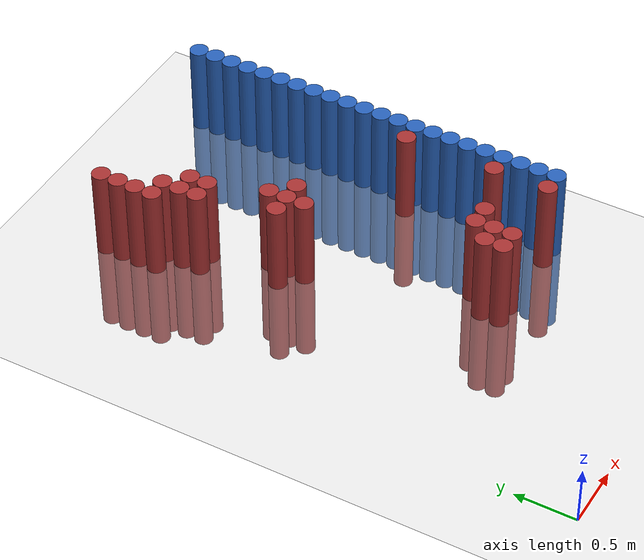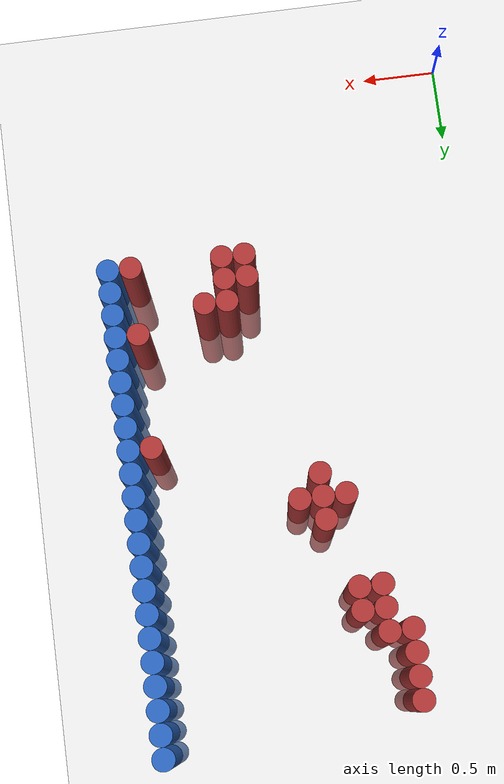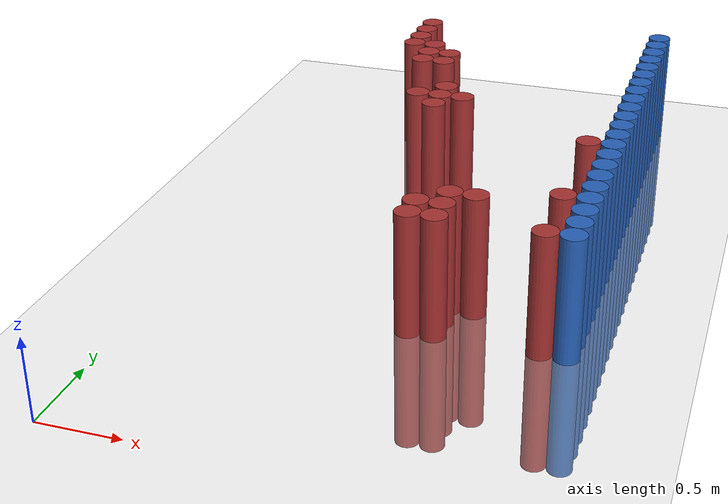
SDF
<sdf version="1.6">
 <world name="default">
  <model name="ground_plane">
   <static>1</static>
   <link name="link">
    <collision name="collision">
     <geometry><plane><normal>0 0 1</normal><size>100 100</size></plane></geometry>
     <surface><friction><ode><mu>100</mu><mu2>50</mu2></ode></friction></surface>
    </collision>
    <visual name="visual">
     <cast_shadows>0</cast_shadows>
     <geometry><plane><normal>0 0 1</normal><size>100 100</size></plane></geometry>
     <material>
      <script><uri>file://media/materials/scripts/gazebo.material</uri><name>Gazebo/Grey</name></script>
     </material>
    </visual>
   </link>
  </model>
  <model name="unit_cylinder_165">
   <static>1</static>
   <pose>0.775000 3.925000 0.000000 0.000000 0.000000 0.000000</pose>
   <link name="link">
    <inertial>
     <mass>1</mass>
     <inertia><ixx>0.145833</ixx><ixy>0</ixy><ixz>0</ixz><iyy>0.145833</iyy><iyz>0</iyz><izz>0.125</izz></inertia>
    </inertial>
    <collision name="collision">
     <geometry><cylinder><radius>0.075000</radius><length>1.5</length></cylinder></geometry>
    </collision>
    <visual name="visual">
     <geometry><cylinder><radius>0.075000</radius><length>1.5</length></cylinder></geometry>
     <material>
      <ambient>0.648000 0.192000 0.192000 1</ambient>
      <diffuse>0.648000 0.192000 0.192000 1</diffuse>
     </material>
     <material>
      <script><name>Gazebo/Grey</name><uri>file://media/materials/scripts/gazebo.material</uri></script>
     </material>
    </visual>
   </link>
  </model>
  <model name="unit_cylinder_166">
   <static>1</static>
   <pose>0.775000 4.075000 0.000000 0.000000 0.000000 0.000000</pose>
   <link name="link">
    <inertial>
     <mass>1</mass>
     <inertia><ixx>0.145833</ixx><ixy>0</ixy><ixz>0</ixz><iyy>0.145833</iyy><iyz>0</iyz><izz>0.125</izz></inertia>
    </inertial>
    <collision name="collision">
     <geometry><cylinder><radius>0.075000</radius><length>1.5</length></cylinder></geometry>
    </collision>
    <visual name="visual">
     <geometry><cylinder><radius>0.075000</radius><length>1.5</length></cylinder></geometry>
     <material>
      <ambient>0.648000 0.192000 0.192000 1</ambient>
      <diffuse>0.648000 0.192000 0.192000 1</diffuse>
     </material>
     <material>
      <script><name>Gazebo/Grey</name><uri>file://media/materials/scripts/gazebo.material</uri></script>
     </material>
    </visual>
   </link>
  </model>
  <model name="unit_cylinder_167">
   <static>1</static>
   <pose>0.775000 4.225000 0.000000 0.000000 0.000000 0.000000</pose>
   <link name="link">
    <inertial>
     <mass>1</mass>
     <inertia><ixx>0.145833</ixx><ixy>0</ixy><ixz>0</ixz><iyy>0.145833</iyy><iyz>0</iyz><izz>0.125</izz></inertia>
    </inertial>
    <collision name="collision">
     <geometry><cylinder><radius>0.075000</radius><length>1.5</length></cylinder></geometry>
    </collision>
    <visual name="visual">
     <geometry><cylinder><radius>0.075000</radius><length>1.5</length></cylinder></geometry>
     <material>
      <ambient>0.648000 0.192000 0.192000 1</ambient>
      <diffuse>0.648000 0.192000 0.192000 1</diffuse>
     </material>
     <material>
      <script><name>Gazebo/Grey</name><uri>file://media/materials/scripts/gazebo.material</uri></script>
     </material>
    </visual>
   </link>
  </model>
  <model name="unit_cylinder_168">
   <static>1</static>
   <pose>0.775000 4.375000 0.000000 0.000000 0.000000 0.000000</pose>
   <link name="link">
    <inertial>
     <mass>1</mass>
     <inertia><ixx>0.145833</ixx><ixy>0</ixy><ixz>0</ixz><iyy>0.145833</iyy><iyz>0</iyz><izz>0.125</izz></inertia>
    </inertial>
    <collision name="collision">
     <geometry><cylinder><radius>0.075000</radius><length>1.5</length></cylinder></geometry>
    </collision>
    <visual name="visual">
     <geometry><cylinder><radius>0.075000</radius><length>1.5</length></cylinder></geometry>
     <material>
      <ambient>0.648000 0.192000 0.192000 1</ambient>
      <diffuse>0.648000 0.192000 0.192000 1</diffuse>
     </material>
     <material>
      <script><name>Gazebo/Grey</name><uri>file://media/materials/scripts/gazebo.material</uri></script>
     </material>
    </visual>
   </link>
  </model>
  <model name="unit_cylinder_169">
   <static>1</static>
   <pose>0.925000 3.625000 0.000000 0.000000 0.000000 0.000000</pose>
   <link name="link">
    <inertial>
     <mass>1</mass>
     <inertia><ixx>0.145833</ixx><ixy>0</ixy><ixz>0</ixz><iyy>0.145833</iyy><iyz>0</iyz><izz>0.125</izz></inertia>
    </inertial>
    <collision name="collision">
     <geometry><cylinder><radius>0.075000</radius><length>1.5</length></cylinder></geometry>
    </collision>
    <visual name="visual">
     <geometry><cylinder><radius>0.075000</radius><length>1.5</length></cylinder></geometry>
     <material>
      <ambient>0.648000 0.192000 0.192000 1</ambient>
      <diffuse>0.648000 0.192000 0.192000 1</diffuse>
     </material>
     <material>
      <script><name>Gazebo/Grey</name><uri>file://media/materials/scripts/gazebo.material</uri></script>
     </material>
    </visual>
   </link>
  </model>
  <model name="unit_cylinder_170">
   <static>1</static>
   <pose>0.925000 3.775000 0.000000 0.000000 0.000000 0.000000</pose>
   <link name="link">
    <inertial>
     <mass>1</mass>
     <inertia><ixx>0.145833</ixx><ixy>0</ixy><ixz>0</ixz><iyy>0.145833</iyy><iyz>0</iyz><izz>0.125</izz></inertia>
    </inertial>
    <collision name="collision">
     <geometry><cylinder><radius>0.075000</radius><length>1.5</length></cylinder></geometry>
    </collision>
    <visual name="visual">
     <geometry><cylinder><radius>0.075000</radius><length>1.5</length></cylinder></geometry>
     <material>
      <ambient>0.648000 0.192000 0.192000 1</ambient>
      <diffuse>0.648000 0.192000 0.192000 1</diffuse>
     </material>
     <material>
      <script><name>Gazebo/Grey</name><uri>file://media/materials/scripts/gazebo.material</uri></script>
     </material>
    </visual>
   </link>
  </model>
  <model name="unit_cylinder_171">
   <static>1</static>
   <pose>0.925000 3.925000 0.000000 0.000000 0.000000 0.000000</pose>
   <link name="link">
    <inertial>
     <mass>1</mass>
     <inertia><ixx>0.145833</ixx><ixy>0</ixy><ixz>0</ixz><iyy>0.145833</iyy><iyz>0</iyz><izz>0.125</izz></inertia>
    </inertial>
    <collision name="collision">
     <geometry><cylinder><radius>0.075000</radius><length>1.5</length></cylinder></geometry>
    </collision>
    <visual name="visual">
     <geometry><cylinder><radius>0.075000</radius><length>1.5</length></cylinder></geometry>
     <material>
      <ambient>0.648000 0.192000 0.192000 1</ambient>
      <diffuse>0.648000 0.192000 0.192000 1</diffuse>
     </material>
     <material>
      <script><name>Gazebo/Grey</name><uri>file://media/materials/scripts/gazebo.material</uri></script>
     </material>
    </visual>
   </link>
  </model>
  <model name="unit_cylinder_172">
   <static>1</static>
   <pose>1.075000 3.025000 0.000000 0.000000 0.000000 0.000000</pose>
   <link name="link">
    <inertial>
     <mass>1</mass>
     <inertia><ixx>0.145833</ixx><ixy>0</ixy><ixz>0</ixz><iyy>0.145833</iyy><iyz>0</iyz><izz>0.125</izz></inertia>
    </inertial>
    <collision name="collision">
     <geometry><cylinder><radius>0.075000</radius><length>1.5</length></cylinder></geometry>
    </collision>
    <visual name="visual">
     <geometry><cylinder><radius>0.075000</radius><length>1.5</length></cylinder></geometry>
     <material>
      <ambient>0.648000 0.192000 0.192000 1</ambient>
      <diffuse>0.648000 0.192000 0.192000 1</diffuse>
     </material>
     <material>
      <script><name>Gazebo/Grey</name><uri>file://media/materials/scripts/gazebo.material</uri></script>
     </material>
    </visual>
   </link>
  </model>
  <model name="unit_cylinder_173">
   <static>1</static>
   <pose>1.075000 3.625000 0.000000 0.000000 0.000000 0.000000</pose>
   <link name="link">
    <inertial>
     <mass>1</mass>
     <inertia><ixx>0.145833</ixx><ixy>0</ixy><ixz>0</ixz><iyy>0.145833</iyy><iyz>0</iyz><izz>0.125</izz></inertia>
    </inertial>
    <collision name="collision">
     <geometry><cylinder><radius>0.075000</radius><length>1.5</length></cylinder></geometry>
    </collision>
    <visual name="visual">
     <geometry><cylinder><radius>0.075000</radius><length>1.5</length></cylinder></geometry>
     <material>
      <ambient>0.648000 0.192000 0.192000 1</ambient>
      <diffuse>0.648000 0.192000 0.192000 1</diffuse>
     </material>
     <material>
      <script><name>Gazebo/Grey</name><uri>file://media/materials/scripts/gazebo.material</uri></script>
     </material>
    </visual>
   </link>
  </model>
  <model name="unit_cylinder_174">
   <static>1</static>
   <pose>1.075000 3.775000 0.000000 0.000000 0.000000 0.000000</pose>
   <link name="link">
    <inertial>
     <mass>1</mass>
     <inertia><ixx>0.145833</ixx><ixy>0</ixy><ixz>0</ixz><iyy>0.145833</iyy><iyz>0</iyz><izz>0.125</izz></inertia>
    </inertial>
    <collision name="collision">
     <geometry><cylinder><radius>0.075000</radius><length>1.5</length></cylinder></geometry>
    </collision>
    <visual name="visual">
     <geometry><cylinder><radius>0.075000</radius><length>1.5</length></cylinder></geometry>
     <material>
      <ambient>0.648000 0.192000 0.192000 1</ambient>
      <diffuse>0.648000 0.192000 0.192000 1</diffuse>
     </material>
     <material>
      <script><name>Gazebo/Grey</name><uri>file://media/materials/scripts/gazebo.material</uri></script>
     </material>
    </visual>
   </link>
  </model>
  <model name="unit_cylinder_175">
   <static>1</static>
   <pose>1.225000 2.875000 0.000000 0.000000 0.000000 0.000000</pose>
   <link name="link">
    <inertial>
     <mass>1</mass>
     <inertia><ixx>0.145833</ixx><ixy>0</ixy><ixz>0</ixz><iyy>0.145833</iyy><iyz>0</iyz><izz>0.125</izz></inertia>
    </inertial>
    <collision name="collision">
     <geometry><cylinder><radius>0.075000</radius><length>1.5</length></cylinder></geometry>
    </collision>
    <visual name="visual">
     <geometry><cylinder><radius>0.075000</radius><length>1.5</length></cylinder></geometry>
     <material>
      <ambient>0.648000 0.192000 0.192000 1</ambient>
      <diffuse>0.648000 0.192000 0.192000 1</diffuse>
     </material>
     <material>
      <script><name>Gazebo/Grey</name><uri>file://media/materials/scripts/gazebo.material</uri></script>
     </material>
    </visual>
   </link>
  </model>
  <model name="unit_cylinder_176">
   <static>1</static>
   <pose>1.225000 3.025000 0.000000 0.000000 0.000000 0.000000</pose>
   <link name="link">
    <inertial>
     <mass>1</mass>
     <inertia><ixx>0.145833</ixx><ixy>0</ixy><ixz>0</ixz><iyy>0.145833</iyy><iyz>0</iyz><izz>0.125</izz></inertia>
    </inertial>
    <collision name="collision">
     <geometry><cylinder><radius>0.075000</radius><length>1.5</length></cylinder></geometry>
    </collision>
    <visual name="visual">
     <geometry><cylinder><radius>0.075000</radius><length>1.5</length></cylinder></geometry>
     <material>
      <ambient>0.648000 0.192000 0.192000 1</ambient>
      <diffuse>0.648000 0.192000 0.192000 1</diffuse>
     </material>
     <material>
      <script><name>Gazebo/Grey</name><uri>file://media/materials/scripts/gazebo.material</uri></script>
     </material>
    </visual>
   </link>
  </model>
  <model name="unit_cylinder_177">
   <static>1</static>
   <pose>1.225000 3.175000 0.000000 0.000000 0.000000 0.000000</pose>
   <link name="link">
    <inertial>
     <mass>1</mass>
     <inertia><ixx>0.145833</ixx><ixy>0</ixy><ixz>0</ixz><iyy>0.145833</iyy><iyz>0</iyz><izz>0.125</izz></inertia>
    </inertial>
    <collision name="collision">
     <geometry><cylinder><radius>0.075000</radius><length>1.5</length></cylinder></geometry>
    </collision>
    <visual name="visual">
     <geometry><cylinder><radius>0.075000</radius><length>1.5</length></cylinder></geometry>
     <material>
      <ambient>0.648000 0.192000 0.192000 1</ambient>
      <diffuse>0.648000 0.192000 0.192000 1</diffuse>
     </material>
     <material>
      <script><name>Gazebo/Grey</name><uri>file://media/materials/scripts/gazebo.material</uri></script>
     </material>
    </visual>
   </link>
  </model>
  <model name="unit_cylinder_178">
   <static>1</static>
   <pose>1.375000 3.025000 0.000000 0.000000 0.000000 0.000000</pose>
   <link name="link">
    <inertial>
     <mass>1</mass>
     <inertia><ixx>0.145833</ixx><ixy>0</ixy><ixz>0</ixz><iyy>0.145833</iyy><iyz>0</iyz><izz>0.125</izz></inertia>
    </inertial>
    <collision name="collision">
     <geometry><cylinder><radius>0.075000</radius><length>1.5</length></cylinder></geometry>
    </collision>
    <visual name="visual">
     <geometry><cylinder><radius>0.075000</radius><length>1.5</length></cylinder></geometry>
     <material>
      <ambient>0.648000 0.192000 0.192000 1</ambient>
      <diffuse>0.648000 0.192000 0.192000 1</diffuse>
     </material>
     <material>
      <script><name>Gazebo/Grey</name><uri>file://media/materials/scripts/gazebo.material</uri></script>
     </material>
    </visual>
   </link>
  </model>
  <model name="unit_cylinder_179">
   <static>1</static>
   <pose>1.525000 1.375000 0.000000 0.000000 0.000000 0.000000</pose>
   <link name="link">
    <inertial>
     <mass>1</mass>
     <inertia><ixx>0.145833</ixx><ixy>0</ixy><ixz>0</ixz><iyy>0.145833</iyy><iyz>0</iyz><izz>0.125</izz></inertia>
    </inertial>
    <collision name="collision">
     <geometry><cylinder><radius>0.075000</radius><length>1.5</length></cylinder></geometry>
    </collision>
    <visual name="visual">
     <geometry><cylinder><radius>0.075000</radius><length>1.5</length></cylinder></geometry>
     <material>
      <ambient>0.648000 0.192000 0.192000 1</ambient>
      <diffuse>0.648000 0.192000 0.192000 1</diffuse>
     </material>
     <material>
      <script><name>Gazebo/Grey</name><uri>file://media/materials/scripts/gazebo.material</uri></script>
     </material>
    </visual>
   </link>
  </model>
  <model name="unit_cylinder_180">
   <static>1</static>
   <pose>1.525000 1.525000 0.000000 0.000000 0.000000 0.000000</pose>
   <link name="link">
    <inertial>
     <mass>1</mass>
     <inertia><ixx>0.145833</ixx><ixy>0</ixy><ixz>0</ixz><iyy>0.145833</iyy><iyz>0</iyz><izz>0.125</izz></inertia>
    </inertial>
    <collision name="collision">
     <geometry><cylinder><radius>0.075000</radius><length>1.5</length></cylinder></geometry>
    </collision>
    <visual name="visual">
     <geometry><cylinder><radius>0.075000</radius><length>1.5</length></cylinder></geometry>
     <material>
      <ambient>0.648000 0.192000 0.192000 1</ambient>
      <diffuse>0.648000 0.192000 0.192000 1</diffuse>
     </material>
     <material>
      <script><name>Gazebo/Grey</name><uri>file://media/materials/scripts/gazebo.material</uri></script>
     </material>
    </visual>
   </link>
  </model>
  <model name="unit_cylinder_182">
   <static>1</static>
   <pose>1.675000 1.375000 0.000000 0.000000 0.000000 0.000000</pose>
   <link name="link">
    <inertial>
     <mass>1</mass>
     <inertia><ixx>0.145833</ixx><ixy>0</ixy><ixz>0</ixz><iyy>0.145833</iyy><iyz>0</iyz><izz>0.125</izz></inertia>
    </inertial>
    <collision name="collision">
     <geometry><cylinder><radius>0.075000</radius><length>1.5</length></cylinder></geometry>
    </collision>
    <visual name="visual">
     <geometry><cylinder><radius>0.075000</radius><length>1.5</length></cylinder></geometry>
     <material>
      <ambient>0.648000 0.192000 0.192000 1</ambient>
      <diffuse>0.648000 0.192000 0.192000 1</diffuse>
     </material>
     <material>
      <script><name>Gazebo/Grey</name><uri>file://media/materials/scripts/gazebo.material</uri></script>
     </material>
    </visual>
   </link>
  </model>
  <model name="unit_cylinder_183">
   <static>1</static>
   <pose>1.675000 1.525000 0.000000 0.000000 0.000000 0.000000</pose>
   <link name="link">
    <inertial>
     <mass>1</mass>
     <inertia><ixx>0.145833</ixx><ixy>0</ixy><ixz>0</ixz><iyy>0.145833</iyy><iyz>0</iyz><izz>0.125</izz></inertia>
    </inertial>
    <collision name="collision">
     <geometry><cylinder><radius>0.075000</radius><length>1.5</length></cylinder></geometry>
    </collision>
    <visual name="visual">
     <geometry><cylinder><radius>0.075000</radius><length>1.5</length></cylinder></geometry>
     <material>
      <ambient>0.648000 0.192000 0.192000 1</ambient>
      <diffuse>0.648000 0.192000 0.192000 1</diffuse>
     </material>
     <material>
      <script><name>Gazebo/Grey</name><uri>file://media/materials/scripts/gazebo.material</uri></script>
     </material>
    </visual>
   </link>
  </model>
  <model name="unit_cylinder_184">
   <static>1</static>
   <pose>1.675000 1.675000 0.000000 0.000000 0.000000 0.000000</pose>
   <link name="link">
    <inertial>
     <mass>1</mass>
     <inertia><ixx>0.145833</ixx><ixy>0</ixy><ixz>0</ixz><iyy>0.145833</iyy><iyz>0</iyz><izz>0.125</izz></inertia>
    </inertial>
    <collision name="collision">
     <geometry><cylinder><radius>0.075000</radius><length>1.5</length></cylinder></geometry>
    </collision>
    <visual name="visual">
     <geometry><cylinder><radius>0.075000</radius><length>1.5</length></cylinder></geometry>
     <material>
      <ambient>0.648000 0.192000 0.192000 1</ambient>
      <diffuse>0.648000 0.192000 0.192000 1</diffuse>
     </material>
     <material>
      <script><name>Gazebo/Grey</name><uri>file://media/materials/scripts/gazebo.material</uri></script>
     </material>
    </visual>
   </link>
  </model>
  <model name="unit_cylinder_185">
   <static>1</static>
   <pose>1.825000 1.675000 0.000000 0.000000 0.000000 0.000000</pose>
   <link name="link">
    <inertial>
     <mass>1</mass>
     <inertia><ixx>0.145833</ixx><ixy>0</ixy><ixz>0</ixz><iyy>0.145833</iyy><iyz>0</iyz><izz>0.125</izz></inertia>
    </inertial>
    <collision name="collision">
     <geometry><cylinder><radius>0.075000</radius><length>1.5</length></cylinder></geometry>
    </collision>
    <visual name="visual">
     <geometry><cylinder><radius>0.075000</radius><length>1.5</length></cylinder></geometry>
     <material>
      <ambient>0.648000 0.192000 0.192000 1</ambient>
      <diffuse>0.648000 0.192000 0.192000 1</diffuse>
     </material>
     <material>
      <script><name>Gazebo/Grey</name><uri>file://media/materials/scripts/gazebo.material</uri></script>
     </material>
    </visual>
   </link>
  </model>
  <model name="unit_cylinder_192">
   <static>1</static>
   <pose>2.275000 1.375000 0.000000 0.000000 0.000000 0.000000</pose>
   <link name="link">
    <inertial>
     <mass>1</mass>
     <inertia><ixx>0.145833</ixx><ixy>0</ixy><ixz>0</ixz><iyy>0.145833</iyy><iyz>0</iyz><izz>0.125</izz></inertia>
    </inertial>
    <collision name="collision">
     <geometry><cylinder><radius>0.075000</radius><length>1.5</length></cylinder></geometry>
    </collision>
    <visual name="visual">
     <geometry><cylinder><radius>0.075000</radius><length>1.5</length></cylinder></geometry>
     <material>
      <ambient>0.648000 0.192000 0.192000 1</ambient>
      <diffuse>0.648000 0.192000 0.192000 1</diffuse>
     </material>
     <material>
      <script><name>Gazebo/Grey</name><uri>file://media/materials/scripts/gazebo.material</uri></script>
     </material>
    </visual>
   </link>
  </model>
  <model name="unit_cylinder_193">
   <static>1</static>
   <pose>2.275000 1.825000 0.000000 0.000000 0.000000 0.000000</pose>
   <link name="link">
    <inertial>
     <mass>1</mass>
     <inertia><ixx>0.145833</ixx><ixy>0</ixy><ixz>0</ixz><iyy>0.145833</iyy><iyz>0</iyz><izz>0.125</izz></inertia>
    </inertial>
    <collision name="collision">
     <geometry><cylinder><radius>0.075000</radius><length>1.5</length></cylinder></geometry>
    </collision>
    <visual name="visual">
     <geometry><cylinder><radius>0.075000</radius><length>1.5</length></cylinder></geometry>
     <material>
      <ambient>0.648000 0.192000 0.192000 1</ambient>
      <diffuse>0.648000 0.192000 0.192000 1</diffuse>
     </material>
     <material>
      <script><name>Gazebo/Grey</name><uri>file://media/materials/scripts/gazebo.material</uri></script>
     </material>
    </visual>
   </link>
  </model>
  <model name="unit_cylinder_194">
   <static>1</static>
   <pose>2.275000 2.575000 0.000000 0.000000 0.000000 0.000000</pose>
   <link name="link">
    <inertial>
     <mass>1</mass>
     <inertia><ixx>0.145833</ixx><ixy>0</ixy><ixz>0</ixz><iyy>0.145833</iyy><iyz>0</iyz><izz>0.125</izz></inertia>
    </inertial>
    <collision name="collision">
     <geometry><cylinder><radius>0.075000</radius><length>1.5</length></cylinder></geometry>
    </collision>
    <visual name="visual">
     <geometry><cylinder><radius>0.075000</radius><length>1.5</length></cylinder></geometry>
     <material>
      <ambient>0.648000 0.192000 0.192000 1</ambient>
      <diffuse>0.648000 0.192000 0.192000 1</diffuse>
     </material>
     <material>
      <script><name>Gazebo/Grey</name><uri>file://media/materials/scripts/gazebo.material</uri></script>
     </material>
    </visual>
   </link>
  </model>
  <model name="unit_cylinder_203">
   <static>1</static>
   <pose>2.425000 1.375000 0.000000 0.000000 0.000000 0.000000</pose>
   <link name="link">
    <inertial>
     <mass>1</mass>
     <inertia><ixx>0.145833</ixx><ixy>0</ixy><ixz>0</ixz><iyy>0.145833</iyy><iyz>0</iyz><izz>0.125</izz></inertia>
    </inertial>
    <collision name="collision">
     <geometry><cylinder><radius>0.075000</radius><length>1.5</length></cylinder></geometry>
    </collision>
    <visual name="visual">
     <geometry><cylinder><radius>0.075000</radius><length>1.5</length></cylinder></geometry>
     <material>
      <ambient>0.152000 0.379000 0.720000 1</ambient>
      <diffuse>0.152000 0.379000 0.720000 1</diffuse>
     </material>
     <material>
      <script><name>Gazebo/Grey</name><uri>file://media/materials/scripts/gazebo.material</uri></script>
     </material>
    </visual>
   </link>
  </model>
  <model name="unit_cylinder_204">
   <static>1</static>
   <pose>2.425000 1.525000 0.000000 0.000000 0.000000 0.000000</pose>
   <link name="link">
    <inertial>
     <mass>1</mass>
     <inertia><ixx>0.145833</ixx><ixy>0</ixy><ixz>0</ixz><iyy>0.145833</iyy><iyz>0</iyz><izz>0.125</izz></inertia>
    </inertial>
    <collision name="collision">
     <geometry><cylinder><radius>0.075000</radius><length>1.5</length></cylinder></geometry>
    </collision>
    <visual name="visual">
     <geometry><cylinder><radius>0.075000</radius><length>1.5</length></cylinder></geometry>
     <material>
      <ambient>0.152000 0.379000 0.720000 1</ambient>
      <diffuse>0.152000 0.379000 0.720000 1</diffuse>
     </material>
     <material>
      <script><name>Gazebo/Grey</name><uri>file://media/materials/scripts/gazebo.material</uri></script>
     </material>
    </visual>
   </link>
  </model>
  <model name="unit_cylinder_205">
   <static>1</static>
   <pose>2.425000 1.675000 0.000000 0.000000 0.000000 0.000000</pose>
   <link name="link">
    <inertial>
     <mass>1</mass>
     <inertia><ixx>0.145833</ixx><ixy>0</ixy><ixz>0</ixz><iyy>0.145833</iyy><iyz>0</iyz><izz>0.125</izz></inertia>
    </inertial>
    <collision name="collision">
     <geometry><cylinder><radius>0.075000</radius><length>1.5</length></cylinder></geometry>
    </collision>
    <visual name="visual">
     <geometry><cylinder><radius>0.075000</radius><length>1.5</length></cylinder></geometry>
     <material>
      <ambient>0.152000 0.379000 0.720000 1</ambient>
      <diffuse>0.152000 0.379000 0.720000 1</diffuse>
     </material>
     <material>
      <script><name>Gazebo/Grey</name><uri>file://media/materials/scripts/gazebo.material</uri></script>
     </material>
    </visual>
   </link>
  </model>
  <model name="unit_cylinder_206">
   <static>1</static>
   <pose>2.425000 1.825000 0.000000 0.000000 0.000000 0.000000</pose>
   <link name="link">
    <inertial>
     <mass>1</mass>
     <inertia><ixx>0.145833</ixx><ixy>0</ixy><ixz>0</ixz><iyy>0.145833</iyy><iyz>0</iyz><izz>0.125</izz></inertia>
    </inertial>
    <collision name="collision">
     <geometry><cylinder><radius>0.075000</radius><length>1.5</length></cylinder></geometry>
    </collision>
    <visual name="visual">
     <geometry><cylinder><radius>0.075000</radius><length>1.5</length></cylinder></geometry>
     <material>
      <ambient>0.152000 0.379000 0.720000 1</ambient>
      <diffuse>0.152000 0.379000 0.720000 1</diffuse>
     </material>
     <material>
      <script><name>Gazebo/Grey</name><uri>file://media/materials/scripts/gazebo.material</uri></script>
     </material>
    </visual>
   </link>
  </model>
  <model name="unit_cylinder_207">
   <static>1</static>
   <pose>2.425000 1.975000 0.000000 0.000000 0.000000 0.000000</pose>
   <link name="link">
    <inertial>
     <mass>1</mass>
     <inertia><ixx>0.145833</ixx><ixy>0</ixy><ixz>0</ixz><iyy>0.145833</iyy><iyz>0</iyz><izz>0.125</izz></inertia>
    </inertial>
    <collision name="collision">
     <geometry><cylinder><radius>0.075000</radius><length>1.5</length></cylinder></geometry>
    </collision>
    <visual name="visual">
     <geometry><cylinder><radius>0.075000</radius><length>1.5</length></cylinder></geometry>
     <material>
      <ambient>0.152000 0.379000 0.720000 1</ambient>
      <diffuse>0.152000 0.379000 0.720000 1</diffuse>
     </material>
     <material>
      <script><name>Gazebo/Grey</name><uri>file://media/materials/scripts/gazebo.material</uri></script>
     </material>
    </visual>
   </link>
  </model>
  <model name="unit_cylinder_208">
   <static>1</static>
   <pose>2.425000 2.125000 0.000000 0.000000 0.000000 0.000000</pose>
   <link name="link">
    <inertial>
     <mass>1</mass>
     <inertia><ixx>0.145833</ixx><ixy>0</ixy><ixz>0</ixz><iyy>0.145833</iyy><iyz>0</iyz><izz>0.125</izz></inertia>
    </inertial>
    <collision name="collision">
     <geometry><cylinder><radius>0.075000</radius><length>1.5</length></cylinder></geometry>
    </collision>
    <visual name="visual">
     <geometry><cylinder><radius>0.075000</radius><length>1.5</length></cylinder></geometry>
     <material>
      <ambient>0.152000 0.379000 0.720000 1</ambient>
      <diffuse>0.152000 0.379000 0.720000 1</diffuse>
     </material>
     <material>
      <script><name>Gazebo/Grey</name><uri>file://media/materials/scripts/gazebo.material</uri></script>
     </material>
    </visual>
   </link>
  </model>
  <model name="unit_cylinder_209">
   <static>1</static>
   <pose>2.425000 2.275000 0.000000 0.000000 0.000000 0.000000</pose>
   <link name="link">
    <inertial>
     <mass>1</mass>
     <inertia><ixx>0.145833</ixx><ixy>0</ixy><ixz>0</ixz><iyy>0.145833</iyy><iyz>0</iyz><izz>0.125</izz></inertia>
    </inertial>
    <collision name="collision">
     <geometry><cylinder><radius>0.075000</radius><length>1.5</length></cylinder></geometry>
    </collision>
    <visual name="visual">
     <geometry><cylinder><radius>0.075000</radius><length>1.5</length></cylinder></geometry>
     <material>
      <ambient>0.152000 0.379000 0.720000 1</ambient>
      <diffuse>0.152000 0.379000 0.720000 1</diffuse>
     </material>
     <material>
      <script><name>Gazebo/Grey</name><uri>file://media/materials/scripts/gazebo.material</uri></script>
     </material>
    </visual>
   </link>
  </model>
  <model name="unit_cylinder_210">
   <static>1</static>
   <pose>2.425000 2.425000 0.000000 0.000000 0.000000 0.000000</pose>
   <link name="link">
    <inertial>
     <mass>1</mass>
     <inertia><ixx>0.145833</ixx><ixy>0</ixy><ixz>0</ixz><iyy>0.145833</iyy><iyz>0</iyz><izz>0.125</izz></inertia>
    </inertial>
    <collision name="collision">
     <geometry><cylinder><radius>0.075000</radius><length>1.5</length></cylinder></geometry>
    </collision>
    <visual name="visual">
     <geometry><cylinder><radius>0.075000</radius><length>1.5</length></cylinder></geometry>
     <material>
      <ambient>0.152000 0.379000 0.720000 1</ambient>
      <diffuse>0.152000 0.379000 0.720000 1</diffuse>
     </material>
     <material>
      <script><name>Gazebo/Grey</name><uri>file://media/materials/scripts/gazebo.material</uri></script>
     </material>
    </visual>
   </link>
  </model>
  <model name="unit_cylinder_211">
   <static>1</static>
   <pose>2.425000 2.575000 0.000000 0.000000 0.000000 0.000000</pose>
   <link name="link">
    <inertial>
     <mass>1</mass>
     <inertia><ixx>0.145833</ixx><ixy>0</ixy><ixz>0</ixz><iyy>0.145833</iyy><iyz>0</iyz><izz>0.125</izz></inertia>
    </inertial>
    <collision name="collision">
     <geometry><cylinder><radius>0.075000</radius><length>1.5</length></cylinder></geometry>
    </collision>
    <visual name="visual">
     <geometry><cylinder><radius>0.075000</radius><length>1.5</length></cylinder></geometry>
     <material>
      <ambient>0.152000 0.379000 0.720000 1</ambient>
      <diffuse>0.152000 0.379000 0.720000 1</diffuse>
     </material>
     <material>
      <script><name>Gazebo/Grey</name><uri>file://media/materials/scripts/gazebo.material</uri></script>
     </material>
    </visual>
   </link>
  </model>
  <model name="unit_cylinder_212">
   <static>1</static>
   <pose>2.425000 2.725000 0.000000 0.000000 0.000000 0.000000</pose>
   <link name="link">
    <inertial>
     <mass>1</mass>
     <inertia><ixx>0.145833</ixx><ixy>0</ixy><ixz>0</ixz><iyy>0.145833</iyy><iyz>0</iyz><izz>0.125</izz></inertia>
    </inertial>
    <collision name="collision">
     <geometry><cylinder><radius>0.075000</radius><length>1.5</length></cylinder></geometry>
    </collision>
    <visual name="visual">
     <geometry><cylinder><radius>0.075000</radius><length>1.5</length></cylinder></geometry>
     <material>
      <ambient>0.152000 0.379000 0.720000 1</ambient>
      <diffuse>0.152000 0.379000 0.720000 1</diffuse>
     </material>
     <material>
      <script><name>Gazebo/Grey</name><uri>file://media/materials/scripts/gazebo.material</uri></script>
     </material>
    </visual>
   </link>
  </model>
  <model name="unit_cylinder_213">
   <static>1</static>
   <pose>2.425000 2.875000 0.000000 0.000000 0.000000 0.000000</pose>
   <link name="link">
    <inertial>
     <mass>1</mass>
     <inertia><ixx>0.145833</ixx><ixy>0</ixy><ixz>0</ixz><iyy>0.145833</iyy><iyz>0</iyz><izz>0.125</izz></inertia>
    </inertial>
    <collision name="collision">
     <geometry><cylinder><radius>0.075000</radius><length>1.5</length></cylinder></geometry>
    </collision>
    <visual name="visual">
     <geometry><cylinder><radius>0.075000</radius><length>1.5</length></cylinder></geometry>
     <material>
      <ambient>0.152000 0.379000 0.720000 1</ambient>
      <diffuse>0.152000 0.379000 0.720000 1</diffuse>
     </material>
     <material>
      <script><name>Gazebo/Grey</name><uri>file://media/materials/scripts/gazebo.material</uri></script>
     </material>
    </visual>
   </link>
  </model>
  <model name="unit_cylinder_214">
   <static>1</static>
   <pose>2.425000 3.025000 0.000000 0.000000 0.000000 0.000000</pose>
   <link name="link">
    <inertial>
     <mass>1</mass>
     <inertia><ixx>0.145833</ixx><ixy>0</ixy><ixz>0</ixz><iyy>0.145833</iyy><iyz>0</iyz><izz>0.125</izz></inertia>
    </inertial>
    <collision name="collision">
     <geometry><cylinder><radius>0.075000</radius><length>1.5</length></cylinder></geometry>
    </collision>
    <visual name="visual">
     <geometry><cylinder><radius>0.075000</radius><length>1.5</length></cylinder></geometry>
     <material>
      <ambient>0.152000 0.379000 0.720000 1</ambient>
      <diffuse>0.152000 0.379000 0.720000 1</diffuse>
     </material>
     <material>
      <script><name>Gazebo/Grey</name><uri>file://media/materials/scripts/gazebo.material</uri></script>
     </material>
    </visual>
   </link>
  </model>
  <model name="unit_cylinder_215">
   <static>1</static>
   <pose>2.425000 3.175000 0.000000 0.000000 0.000000 0.000000</pose>
   <link name="link">
    <inertial>
     <mass>1</mass>
     <inertia><ixx>0.145833</ixx><ixy>0</ixy><ixz>0</ixz><iyy>0.145833</iyy><iyz>0</iyz><izz>0.125</izz></inertia>
    </inertial>
    <collision name="collision">
     <geometry><cylinder><radius>0.075000</radius><length>1.5</length></cylinder></geometry>
    </collision>
    <visual name="visual">
     <geometry><cylinder><radius>0.075000</radius><length>1.5</length></cylinder></geometry>
     <material>
      <ambient>0.152000 0.379000 0.720000 1</ambient>
      <diffuse>0.152000 0.379000 0.720000 1</diffuse>
     </material>
     <material>
      <script><name>Gazebo/Grey</name><uri>file://media/materials/scripts/gazebo.material</uri></script>
     </material>
    </visual>
   </link>
  </model>
  <model name="unit_cylinder_216">
   <static>1</static>
   <pose>2.425000 3.325000 0.000000 0.000000 0.000000 0.000000</pose>
   <link name="link">
    <inertial>
     <mass>1</mass>
     <inertia><ixx>0.145833</ixx><ixy>0</ixy><ixz>0</ixz><iyy>0.145833</iyy><iyz>0</iyz><izz>0.125</izz></inertia>
    </inertial>
    <collision name="collision">
     <geometry><cylinder><radius>0.075000</radius><length>1.5</length></cylinder></geometry>
    </collision>
    <visual name="visual">
     <geometry><cylinder><radius>0.075000</radius><length>1.5</length></cylinder></geometry>
     <material>
      <ambient>0.152000 0.379000 0.720000 1</ambient>
      <diffuse>0.152000 0.379000 0.720000 1</diffuse>
     </material>
     <material>
      <script><name>Gazebo/Grey</name><uri>file://media/materials/scripts/gazebo.material</uri></script>
     </material>
    </visual>
   </link>
  </model>
  <model name="unit_cylinder_217">
   <static>1</static>
   <pose>2.425000 3.475000 0.000000 0.000000 0.000000 0.000000</pose>
   <link name="link">
    <inertial>
     <mass>1</mass>
     <inertia><ixx>0.145833</ixx><ixy>0</ixy><ixz>0</ixz><iyy>0.145833</iyy><iyz>0</iyz><izz>0.125</izz></inertia>
    </inertial>
    <collision name="collision">
     <geometry><cylinder><radius>0.075000</radius><length>1.5</length></cylinder></geometry>
    </collision>
    <visual name="visual">
     <geometry><cylinder><radius>0.075000</radius><length>1.5</length></cylinder></geometry>
     <material>
      <ambient>0.152000 0.379000 0.720000 1</ambient>
      <diffuse>0.152000 0.379000 0.720000 1</diffuse>
     </material>
     <material>
      <script><name>Gazebo/Grey</name><uri>file://media/materials/scripts/gazebo.material</uri></script>
     </material>
    </visual>
   </link>
  </model>
  <model name="unit_cylinder_218">
   <static>1</static>
   <pose>2.425000 3.625000 0.000000 0.000000 0.000000 0.000000</pose>
   <link name="link">
    <inertial>
     <mass>1</mass>
     <inertia><ixx>0.145833</ixx><ixy>0</ixy><ixz>0</ixz><iyy>0.145833</iyy><iyz>0</iyz><izz>0.125</izz></inertia>
    </inertial>
    <collision name="collision">
     <geometry><cylinder><radius>0.075000</radius><length>1.5</length></cylinder></geometry>
    </collision>
    <visual name="visual">
     <geometry><cylinder><radius>0.075000</radius><length>1.5</length></cylinder></geometry>
     <material>
      <ambient>0.152000 0.379000 0.720000 1</ambient>
      <diffuse>0.152000 0.379000 0.720000 1</diffuse>
     </material>
     <material>
      <script><name>Gazebo/Grey</name><uri>file://media/materials/scripts/gazebo.material</uri></script>
     </material>
    </visual>
   </link>
  </model>
  <model name="unit_cylinder_219">
   <static>1</static>
   <pose>2.425000 3.775000 0.000000 0.000000 0.000000 0.000000</pose>
   <link name="link">
    <inertial>
     <mass>1</mass>
     <inertia><ixx>0.145833</ixx><ixy>0</ixy><ixz>0</ixz><iyy>0.145833</iyy><iyz>0</iyz><izz>0.125</izz></inertia>
    </inertial>
    <collision name="collision">
     <geometry><cylinder><radius>0.075000</radius><length>1.5</length></cylinder></geometry>
    </collision>
    <visual name="visual">
     <geometry><cylinder><radius>0.075000</radius><length>1.5</length></cylinder></geometry>
     <material>
      <ambient>0.152000 0.379000 0.720000 1</ambient>
      <diffuse>0.152000 0.379000 0.720000 1</diffuse>
     </material>
     <material>
      <script><name>Gazebo/Grey</name><uri>file://media/materials/scripts/gazebo.material</uri></script>
     </material>
    </visual>
   </link>
  </model>
  <model name="unit_cylinder_220">
   <static>1</static>
   <pose>2.425000 3.925000 0.000000 0.000000 0.000000 0.000000</pose>
   <link name="link">
    <inertial>
     <mass>1</mass>
     <inertia><ixx>0.145833</ixx><ixy>0</ixy><ixz>0</ixz><iyy>0.145833</iyy><iyz>0</iyz><izz>0.125</izz></inertia>
    </inertial>
    <collision name="collision">
     <geometry><cylinder><radius>0.075000</radius><length>1.5</length></cylinder></geometry>
    </collision>
    <visual name="visual">
     <geometry><cylinder><radius>0.075000</radius><length>1.5</length></cylinder></geometry>
     <material>
      <ambient>0.152000 0.379000 0.720000 1</ambient>
      <diffuse>0.152000 0.379000 0.720000 1</diffuse>
     </material>
     <material>
      <script><name>Gazebo/Grey</name><uri>file://media/materials/scripts/gazebo.material</uri></script>
     </material>
    </visual>
   </link>
  </model>
  <model name="unit_cylinder_221">
   <static>1</static>
   <pose>2.425000 4.075000 0.000000 0.000000 0.000000 0.000000</pose>
   <link name="link">
    <inertial>
     <mass>1</mass>
     <inertia><ixx>0.145833</ixx><ixy>0</ixy><ixz>0</ixz><iyy>0.145833</iyy><iyz>0</iyz><izz>0.125</izz></inertia>
    </inertial>
    <collision name="collision">
     <geometry><cylinder><radius>0.075000</radius><length>1.5</length></cylinder></geometry>
    </collision>
    <visual name="visual">
     <geometry><cylinder><radius>0.075000</radius><length>1.5</length></cylinder></geometry>
     <material>
      <ambient>0.152000 0.379000 0.720000 1</ambient>
      <diffuse>0.152000 0.379000 0.720000 1</diffuse>
     </material>
     <material>
      <script><name>Gazebo/Grey</name><uri>file://media/materials/scripts/gazebo.material</uri></script>
     </material>
    </visual>
   </link>
  </model>
  <model name="unit_cylinder_222">
   <static>1</static>
   <pose>2.425000 4.225000 0.000000 0.000000 0.000000 0.000000</pose>
   <link name="link">
    <inertial>
     <mass>1</mass>
     <inertia><ixx>0.145833</ixx><ixy>0</ixy><ixz>0</ixz><iyy>0.145833</iyy><iyz>0</iyz><izz>0.125</izz></inertia>
    </inertial>
    <collision name="collision">
     <geometry><cylinder><radius>0.075000</radius><length>1.5</length></cylinder></geometry>
    </collision>
    <visual name="visual">
     <geometry><cylinder><radius>0.075000</radius><length>1.5</length></cylinder></geometry>
     <material>
      <ambient>0.152000 0.379000 0.720000 1</ambient>
      <diffuse>0.152000 0.379000 0.720000 1</diffuse>
     </material>
     <material>
      <script><name>Gazebo/Grey</name><uri>file://media/materials/scripts/gazebo.material</uri></script>
     </material>
    </visual>
   </link>
  </model>
  <model name="unit_cylinder_223">
   <static>1</static>
   <pose>2.425000 4.375000 0.000000 0.000000 0.000000 0.000000</pose>
   <link name="link">
    <inertial>
     <mass>1</mass>
     <inertia><ixx>0.145833</ixx><ixy>0</ixy><ixz>0</ixz><iyy>0.145833</iyy><iyz>0</iyz><izz>0.125</izz></inertia>
    </inertial>
    <collision name="collision">
     <geometry><cylinder><radius>0.075000</radius><length>1.5</length></cylinder></geometry>
    </collision>
    <visual name="visual">
     <geometry><cylinder><radius>0.075000</radius><length>1.5</length></cylinder></geometry>
     <material>
      <ambient>0.152000 0.379000 0.720000 1</ambient>
      <diffuse>0.152000 0.379000 0.720000 1</diffuse>
     </material>
     <material>
      <script><name>Gazebo/Grey</name><uri>file://media/materials/scripts/gazebo.material</uri></script>
     </material>
    </visual>
   </link>
  </model>
  <model name="unit_cylinder_224">
   <static>1</static>
   <pose>2.425000 4.525000 0.000000 0.000000 0.000000 0.000000</pose>
   <link name="link">
    <inertial>
     <mass>1</mass>
     <inertia><ixx>0.145833</ixx><ixy>0</ixy><ixz>0</ixz><iyy>0.145833</iyy><iyz>0</iyz><izz>0.125</izz></inertia>
    </inertial>
    <collision name="collision">
     <geometry><cylinder><radius>0.075000</radius><length>1.5</length></cylinder></geometry>
    </collision>
    <visual name="visual">
     <geometry><cylinder><radius>0.075000</radius><length>1.5</length></cylinder></geometry>
     <material>
      <ambient>0.152000 0.379000 0.720000 1</ambient>
      <diffuse>0.152000 0.379000 0.720000 1</diffuse>
     </material>
     <material>
      <script><name>Gazebo/Grey</name><uri>file://media/materials/scripts/gazebo.material</uri></script>
     </material>
    </visual>
   </link>
  </model>
 </world>
</sdf>
